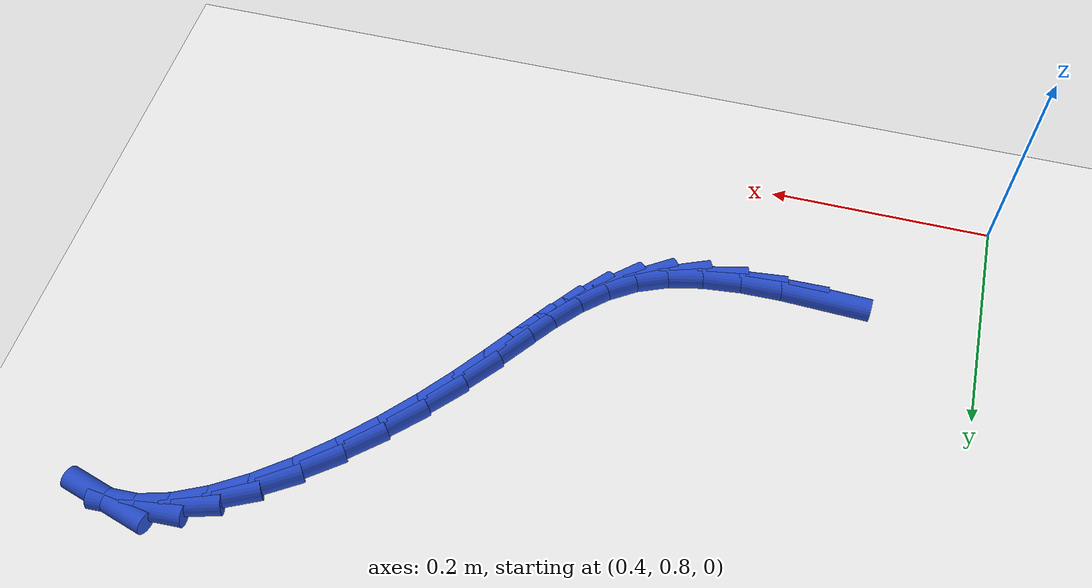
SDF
<sdf version="1.6">
 <world name="default">
  <model name="ground_plane">
   <static>1</static>
   <link name="link">
    <collision name="collision">
     <geometry><plane><normal>0 0 1</normal><size>100 100</size></plane></geometry>
     <surface><friction><ode><mu>100</mu><mu2>50</mu2></ode></friction></surface>
    </collision>
    <visual name="visual">
     <cast_shadows>0</cast_shadows>
     <geometry><plane><normal>0 0 1</normal><size>100 100</size></plane></geometry>
     <material>
      <script><uri>file://media/materials/scripts/gazebo.material</uri><name>Gazebo/WhiteGlow</name></script>
     </material>
    </visual>
   </link>
  </model>
  <model name="line">
   <link name="link_43">
    <pose>0.536646223344883 0.91451459955592 0.01 0 1.57 -0.039189260556959156</pose>
    <collision name="collision">
     <geometry><cylinder><radius>0.01</radius><length>0.08</length></cylinder></geometry>
    </collision>
    <visual name="visual">
     <material>
      <script><name>Gazebo/Blue</name><uri>file://media/materials/scripts/gazebo.material</uri></script>
     </material>
     <geometry><cylinder><radius>0.01</radius><length>0.08</length></cylinder></geometry>
    </visual>
   </link>
   <link name="link_44">
    <pose>0.5746387443899055 0.9130249380649282 0.01 0 1.57 0.0185479258220122</pose>
    <collision name="collision">
     <geometry><cylinder><radius>0.01</radius><length>0.08</length></cylinder></geometry>
    </collision>
    <visual name="visual">
     <material>
      <script><name>Gazebo/Blue</name><uri>file://media/materials/scripts/gazebo.material</uri></script>
     </material>
     <geometry><cylinder><radius>0.01</radius><length>0.08</length></cylinder></geometry>
    </visual>
   </link>
   <link name="link_45">
    <pose>0.6111975167337269 0.9137031052332338 0.01 0 1.57 0.10426028003501539</pose>
    <collision name="collision">
     <geometry><cylinder><radius>0.01</radius><length>0.08</length></cylinder></geometry>
    </collision>
    <visual name="visual">
     <material>
      <script><name>Gazebo/Blue</name><uri>file://media/materials/scripts/gazebo.material</uri></script>
     </material>
     <geometry><cylinder><radius>0.01</radius><length>0.08</length></cylinder></geometry>
    </visual>
   </link>
   <link name="link_46">
    <pose>0.6454462667302554 0.917286884391352 0.01 0 1.57 0.22859888851819138</pose>
    <collision name="collision">
     <geometry><cylinder><radius>0.01</radius><length>0.08</length></cylinder></geometry>
    </collision>
    <visual name="visual">
     <material>
      <script><name>Gazebo/Blue</name><uri>file://media/materials/scripts/gazebo.material</uri></script>
     </material>
     <geometry><cylinder><radius>0.01</radius><length>0.08</length></cylinder></geometry>
    </visual>
   </link>
   <link name="link_47">
    <pose>0.6765087207333988 0.9245140588697981 0.01 0 1.57 0.402550118424764</pose>
    <collision name="collision">
     <geometry><cylinder><radius>0.01</radius><length>0.08</length></cylinder></geometry>
    </collision>
    <visual name="visual">
     <material>
      <script><name>Gazebo/Blue</name><uri>file://media/materials/scripts/gazebo.material</uri></script>
     </material>
     <geometry><cylinder><radius>0.01</radius><length>0.08</length></cylinder></geometry>
    </visual>
   </link>
   <link name="link_48">
    <pose>0.7036090198832176 0.9360534321632212 0.01 0 1.57 0.5911672361322423</pose>
    <collision name="collision">
     <geometry><cylinder><radius>0.01</radius><length>0.08</length></cylinder></geometry>
    </collision>
    <visual name="visual">
     <material>
      <script><name>Gazebo/Blue</name><uri>file://media/materials/scripts/gazebo.material</uri></script>
     </material>
     <geometry><cylinder><radius>0.01</radius><length>0.08</length></cylinder></geometry>
    </visual>
   </link>
   <link name="link_49">
    <pose>0.7270828880962285 0.951810207101362 0.01 0 1.57 0.7489096195645445</pose>
    <collision name="collision">
     <geometry><cylinder><radius>0.01</radius><length>0.08</length></cylinder></geometry>
    </collision>
    <visual name="visual">
     <material>
      <script><name>Gazebo/Blue</name><uri>file://media/materials/scripts/gazebo.material</uri></script>
     </material>
     <geometry><cylinder><radius>0.01</radius><length>0.08</length></cylinder></geometry>
    </visual>
   </link>
   <link name="link_50">
    <pose>0.7479575900101076 0.9712145333144399 0.01 0 1.57 0.8609130629755704</pose>
    <collision name="collision">
     <geometry><cylinder><radius>0.01</radius><length>0.08</length></cylinder></geometry>
    </collision>
    <visual name="visual">
     <material>
      <script><name>Gazebo/Blue</name><uri>file://media/materials/scripts/gazebo.material</uri></script>
     </material>
     <geometry><cylinder><radius>0.01</radius><length>0.08</length></cylinder></geometry>
    </visual>
   </link>
   <link name="link_51">
    <pose>0.7672708181295743 0.9936893970199473 0.01 0 1.57 0.9256783350234769</pose>
    <collision name="collision">
     <geometry><cylinder><radius>0.01</radius><length>0.08</length></cylinder></geometry>
    </collision>
    <visual name="visual">
     <material>
      <script><name>Gazebo/Blue</name><uri>file://media/materials/scripts/gazebo.material</uri></script>
     </material>
     <geometry><cylinder><radius>0.01</radius><length>0.08</length></cylinder></geometry>
    </visual>
   </link>
   <link name="link_52">
    <pose>0.7860602649593482 1.018657784435378 0.01 0 1.57 0.948091656365511</pose>
    <collision name="collision">
     <geometry><cylinder><radius>0.01</radius><length>0.08</length></cylinder></geometry>
    </collision>
    <visual name="visual">
     <material>
      <script><name>Gazebo/Blue</name><uri>file://media/materials/scripts/gazebo.material</uri></script>
     </material>
     <geometry><cylinder><radius>0.01</radius><length>0.08</length></cylinder></geometry>
    </visual>
   </link>
   <link name="link_53">
    <pose>0.8053636230041479 1.0455426817782247 0.01 0 1.57 0.9344381253500879</pose>
    <collision name="collision">
     <geometry><cylinder><radius>0.01</radius><length>0.08</length></cylinder></geometry>
    </collision>
    <visual name="visual">
     <material>
      <script><name>Gazebo/Blue</name><uri>file://media/materials/scripts/gazebo.material</uri></script>
     </material>
     <geometry><cylinder><radius>0.01</radius><length>0.08</length></cylinder></geometry>
    </visual>
   </link>
   <link name="link_54">
    <pose>0.8262185847686929 1.0737670752659803 0.01 0 1.57 0.8937115167652907</pose>
    <collision name="collision">
     <geometry><cylinder><radius>0.01</radius><length>0.08</length></cylinder></geometry>
    </collision>
    <visual name="visual">
     <material>
      <script><name>Gazebo/Blue</name><uri>file://media/materials/scripts/gazebo.material</uri></script>
     </material>
     <geometry><cylinder><radius>0.01</radius><length>0.08</length></cylinder></geometry>
    </visual>
   </link>
   <link name="link_55">
    <pose>0.8494861331020662 1.1027121700253792 0.01 0 1.57 0.8461845269887914</pose>
    <collision name="collision">
     <geometry><cylinder><radius>0.01</radius><length>0.08</length></cylinder></geometry>
    </collision>
    <visual name="visual">
     <material>
      <script><name>Gazebo/Blue</name><uri>file://media/materials/scripts/gazebo.material</uri></script>
     </material>
     <geometry><cylinder><radius>0.01</radius><length>0.08</length></cylinder></geometry>
    </visual>
   </link>
   <link name="link_56">
    <pose>0.8749813859970406 1.131511887726429 0.01 0 1.57 0.7952953578103186</pose>
    <collision name="collision">
     <geometry><cylinder><radius>0.01</radius><length>0.08</length></cylinder></geometry>
    </collision>
    <visual name="visual">
     <material>
      <script><name>Gazebo/Blue</name><uri>file://media/materials/scripts/gazebo.material</uri></script>
     </material>
     <geometry><cylinder><radius>0.01</radius><length>0.08</length></cylinder></geometry>
    </visual>
   </link>
   <link name="link_57">
    <pose>0.9021361060414731 1.1592095097913928 0.01 0 1.57 0.73705975357311</pose>
    <collision name="collision">
     <geometry><cylinder><radius>0.01</radius><length>0.08</length></cylinder></geometry>
    </collision>
    <visual name="visual">
     <material>
      <script><name>Gazebo/Blue</name><uri>file://media/materials/scripts/gazebo.material</uri></script>
     </material>
     <geometry><cylinder><radius>0.01</radius><length>0.08</length></cylinder></geometry>
    </visual>
   </link>
   <link name="link_58">
    <pose>0.9303814763297773 1.1848481806275644 0.01 0 1.57 0.6664002680586689</pose>
    <collision name="collision">
     <geometry><cylinder><radius>0.01</radius><length>0.08</length></cylinder></geometry>
    </collision>
    <visual name="visual">
     <material>
      <script><name>Gazebo/Blue</name><uri>file://media/materials/scripts/gazebo.material</uri></script>
     </material>
     <geometry><cylinder><radius>0.01</radius><length>0.08</length></cylinder></geometry>
    </visual>
   </link>
   <link name="link_59">
    <pose>0.9591486799563673 1.2074710446422376 0.01 0 1.57 0.5759359408535398</pose>
    <collision name="collision">
     <geometry><cylinder><radius>0.01</radius><length>0.08</length></cylinder></geometry>
    </collision>
    <visual name="visual">
     <material>
      <script><name>Gazebo/Blue</name><uri>file://media/materials/scripts/gazebo.material</uri></script>
     </material>
     <geometry><cylinder><radius>0.01</radius><length>0.08</length></cylinder></geometry>
    </visual>
   </link>
   <link name="link_60">
    <pose>0.987868900015656 1.2261212462427056 0.01 0 1.57 0.45416616963184747</pose>
    <collision name="collision">
     <geometry><cylinder><radius>0.01</radius><length>0.08</length></cylinder></geometry>
    </collision>
    <visual name="visual">
     <material>
      <script><name>Gazebo/Blue</name><uri>file://media/materials/scripts/gazebo.material</uri></script>
     </material>
     <geometry><cylinder><radius>0.01</radius><length>0.08</length></cylinder></geometry>
    </visual>
   </link>
   <link name="link_61">
    <pose>1.0159733196020575 1.239841929836262 0.01 0 1.57 0.2832017758984645</pose>
    <collision name="collision">
     <geometry><cylinder><radius>0.01</radius><length>0.08</length></cylinder></geometry>
    </collision>
    <visual name="visual">
     <material>
      <script><name>Gazebo/Blue</name><uri>file://media/materials/scripts/gazebo.material</uri></script>
     </material>
     <geometry><cylinder><radius>0.01</radius><length>0.08</length></cylinder></geometry>
    </visual>
   </link>
   <link name="link_62">
    <pose>1.0428931218099857 1.2476762398302008 0.01 0 1.57 0.03936082207266667</pose>
    <collision name="collision">
     <geometry><cylinder><radius>0.01</radius><length>0.08</length></cylinder></geometry>
    </collision>
    <visual name="visual">
     <material>
      <script><name>Gazebo/Blue</name><uri>file://media/materials/scripts/gazebo.material</uri></script>
     </material>
     <geometry><cylinder><radius>0.01</radius><length>0.08</length></cylinder></geometry>
    </visual>
   </link>
   <link name="link_63">
    <pose>1.0680594897338538 1.2486673206318148 0.01 0 1.57 -0.28967950859084945</pose>
    <collision name="collision">
     <geometry><cylinder><radius>0.01</radius><length>0.08</length></cylinder></geometry>
    </collision>
    <visual name="visual">
     <material>
      <script><name>Gazebo/Blue</name><uri>file://media/materials/scripts/gazebo.material</uri></script>
     </material>
     <geometry><cylinder><radius>0.01</radius><length>0.08</length></cylinder></geometry>
    </visual>
   </link>
  </model>
 </world>
</sdf>
